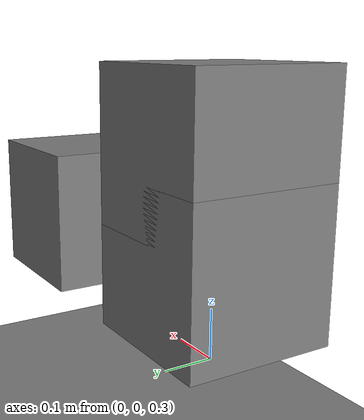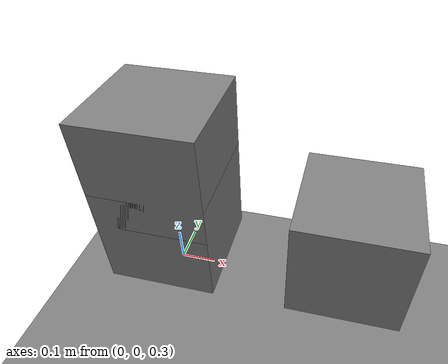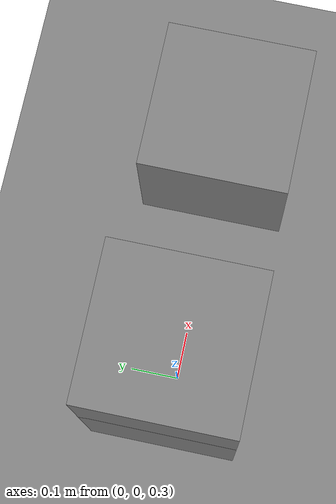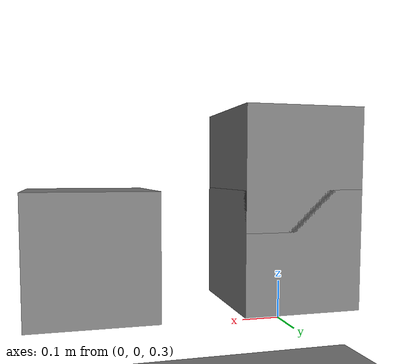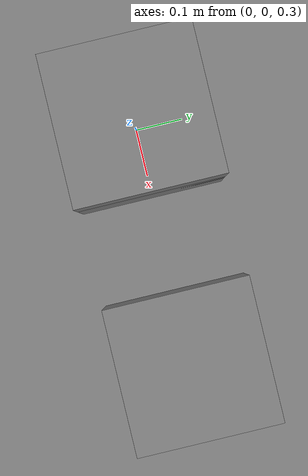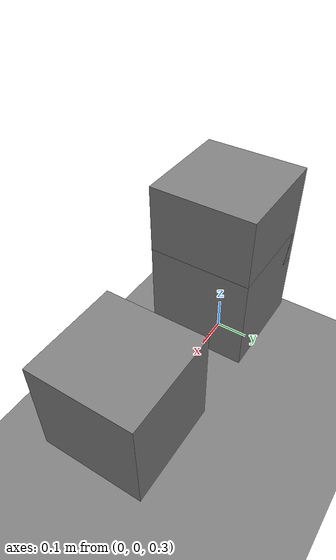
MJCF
<mujoco model="exclude-pairs">
  <option gravity="0 0 -9.81" timestep="0.002"/>
  <worldbody>
    <geom name="ground" type="plane" size="5 5 0.1"/>
    <body name="box_a" pos="0 0 0.5">
      <freejoint name="a_free"/>
      <geom name="a_geom" type="box" size="0.15 0.15 0.15" mass="1.0"/>
    </body>
    <body name="box_b" pos="0 0 0.7">
      <freejoint name="b_free"/>
      <geom name="b_geom" type="box" size="0.15 0.15 0.15" mass="1.0"/>
    </body>
    <body name="box_c" pos="0.5 0 0.5">
      <freejoint name="c_free"/>
      <geom name="c_geom" type="box" size="0.15 0.15 0.15" mass="1.0"/>
    </body>
  </worldbody>
  <contact>
    <exclude body1="box_a" body2="box_b"/>
  </contact>
</mujoco>
